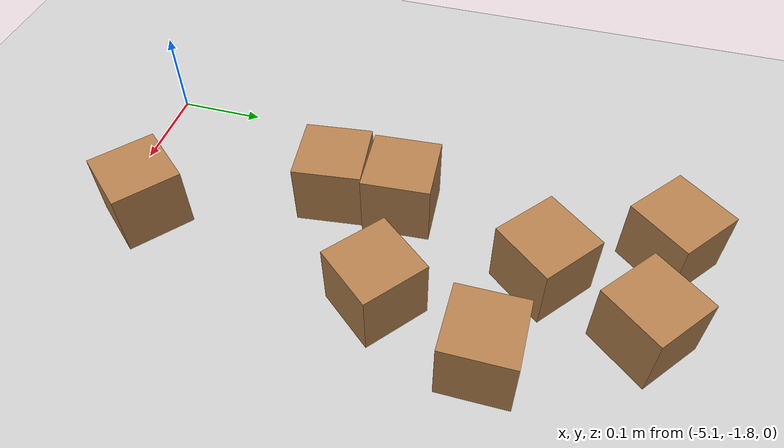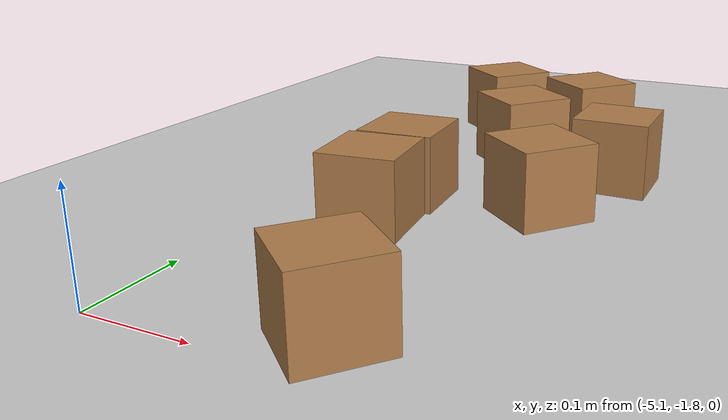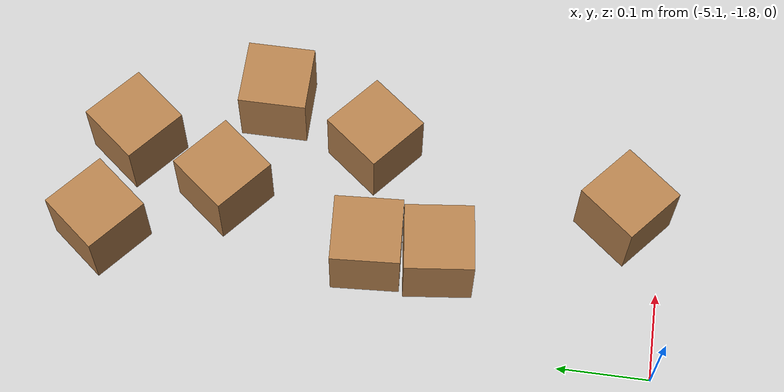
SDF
<sdf version="1.6">
 <world name="default">
  <model name="ground_plane">
   <static>1</static>
   <link name="link">
    <collision name="collision">
     <geometry><plane><normal>0 0 1</normal><size>100 100</size></plane></geometry>
     <surface><friction><ode><mu>100</mu><mu2>50</mu2></ode></friction></surface>
    </collision>
    <visual name="visual">
     <cast_shadows>0</cast_shadows>
     <geometry><plane><normal>0 0 1</normal><size>100 100</size></plane></geometry>
     <material>
      <script><uri>file://media/materials/scripts/gazebo.material</uri><name>Gazebo/Grey</name></script>
     </material>
    </visual>
   </link>
  </model>
  <model name="wood_cube_7_5cm_clone">
   <link name="link">
    <pose>0 0 0.0375 0 -0 0</pose>
    <inertial>
     <mass>0.2249</mass>
     <inertia>
      <ixx>0.000210844</ixx>
      <ixy>0</ixy>
      <ixz>0</ixz>
      <iyy>0.000210844</iyy>
      <iyz>0</iyz>
      <izz>0.000210844</izz>
     </inertia>
    </inertial>
    <collision name="collision">
     <geometry><box><size>0.075 0.075 0.075</size></box></geometry>
     <surface>
      <contact>
       <poissons_ratio>0.347</poissons_ratio>
       <elastic_modulus>8.8e+09</elastic_modulus>
       <ode><kp>100000</kp><kd>100</kd><max_vel>100</max_vel><min_depth>0.001</min_depth></ode>
      </contact>
      <friction>
       <torsional>
        <coefficient>1</coefficient>
        <use_patch_radius>0</use_patch_radius>
        <surface_radius>0.01</surface_radius>
       </torsional>
      </friction>
     </surface>
    </collision>
    <visual name="visual">
     <geometry><box><size>0.075 0.075 0.075</size></box></geometry>
     <material>
      <script><uri>file://media/materials/scripts/gazebo.material</uri><name>Gazebo/Wood</name></script>
     </material>
    </visual>
   </link>
   <pose>-4.99781 -1.55978 -0.001005 0 -0 0.11602</pose>
  </model>
  <model name="wood_cube_7_5cm_clone_1">
   <link name="link">
    <pose>0 0 0.0375 0 -0 0</pose>
    <inertial>
     <mass>0.2249</mass>
     <inertia>
      <ixx>0.000210844</ixx>
      <ixy>0</ixy>
      <ixz>0</ixz>
      <iyy>0.000210844</iyy>
      <iyz>0</iyz>
      <izz>0.000210844</izz>
     </inertia>
    </inertial>
    <collision name="collision">
     <geometry><box><size>0.075 0.075 0.075</size></box></geometry>
     <surface>
      <contact>
       <poissons_ratio>0.347</poissons_ratio>
       <elastic_modulus>8.8e+09</elastic_modulus>
       <ode><kp>100000</kp><kd>100</kd><max_vel>100</max_vel><min_depth>0.001</min_depth></ode>
      </contact>
      <friction>
       <torsional>
        <coefficient>1</coefficient>
        <use_patch_radius>0</use_patch_radius>
        <surface_radius>0.01</surface_radius>
       </torsional>
      </friction>
     </surface>
    </collision>
    <visual name="visual">
     <geometry><box><size>0.075 0.075 0.075</size></box></geometry>
     <material>
      <script><uri>file://media/materials/scripts/gazebo.material</uri><name>Gazebo/Wood</name></script>
     </material>
    </visual>
   </link>
   <pose>-5.00215 -1.44497 0.036495 1.5708 -0 0.066024</pose>
  </model>
  <model name="wood_cube_7_5cm_clone_7">
   <link name="link">
    <pose>0 0 0.0375 0 -0 0</pose>
    <inertial>
     <mass>0.2249</mass>
     <inertia>
      <ixx>0.000210844</ixx>
      <ixy>0</ixy>
      <ixz>0</ixz>
      <iyy>0.000210844</iyy>
      <iyz>0</iyz>
      <izz>0.000210844</izz>
     </inertia>
    </inertial>
    <collision name="collision">
     <geometry><box><size>0.075 0.075 0.075</size></box></geometry>
     <surface>
      <contact>
       <poissons_ratio>0.347</poissons_ratio>
       <elastic_modulus>8.8e+09</elastic_modulus>
       <ode><kp>100000</kp><kd>100</kd><max_vel>100</max_vel><min_depth>0.001</min_depth></ode>
      </contact>
      <friction>
       <torsional>
        <coefficient>1</coefficient>
        <use_patch_radius>0</use_patch_radius>
        <surface_radius>0.01</surface_radius>
       </torsional>
      </friction>
     </surface>
    </collision>
    <visual name="visual">
     <geometry><box><size>0.075 0.075 0.075</size></box></geometry>
     <material>
      <script><uri>file://media/materials/scripts/gazebo.material</uri><name>Gazebo/Wood</name></script>
     </material>
    </visual>
   </link>
   <pose>-4.82543 -1.35696 -0.001005 0 -0 0</pose>
  </model>
  <model name="wood_cube_7_5cm_clone_8">
   <link name="link">
    <pose>0 0 0.0375 0 -0 0</pose>
    <inertial>
     <mass>0.2249</mass>
     <inertia>
      <ixx>0.000210844</ixx>
      <ixy>0</ixy>
      <ixz>0</ixz>
      <iyy>0.000210844</iyy>
      <iyz>0</iyz>
      <izz>0.000210844</izz>
     </inertia>
    </inertial>
    <collision name="collision">
     <geometry><box><size>0.075 0.075 0.075</size></box></geometry>
     <surface>
      <contact>
       <poissons_ratio>0.347</poissons_ratio>
       <elastic_modulus>8.8e+09</elastic_modulus>
       <ode><kp>100000</kp><kd>100</kd><max_vel>100</max_vel><min_depth>0.001</min_depth></ode>
      </contact>
      <friction>
       <torsional>
        <coefficient>1</coefficient>
        <use_patch_radius>0</use_patch_radius>
        <surface_radius>0.01</surface_radius>
       </torsional>
      </friction>
     </surface>
    </collision>
    <visual name="visual">
     <geometry><box><size>0.075 0.075 0.075</size></box></geometry>
     <material>
      <script><uri>file://media/materials/scripts/gazebo.material</uri><name>Gazebo/Wood</name></script>
     </material>
    </visual>
   </link>
   <pose>-4.91761 -1.7568 -0.001005 0 0 -2.27099</pose>
  </model>
  <model name="wood_cube_7_5cm_clone_7_clone_1_clone">
   <link name="link">
    <pose>0 0 0.0375 0 -0 0</pose>
    <inertial>
     <mass>0.2249</mass>
     <inertia>
      <ixx>0.000210844</ixx>
      <ixy>0</ixy>
      <ixz>0</ixz>
      <iyy>0.000210844</iyy>
      <iyz>0</iyz>
      <izz>0.000210844</izz>
     </inertia>
    </inertial>
    <collision name="collision">
     <geometry><box><size>0.075 0.075 0.075</size></box></geometry>
     <surface>
      <contact>
       <poissons_ratio>0.347</poissons_ratio>
       <elastic_modulus>8.8e+09</elastic_modulus>
       <ode><kp>100000</kp><kd>100</kd><max_vel>100</max_vel><min_depth>0.001</min_depth></ode>
      </contact>
      <friction>
       <torsional>
        <coefficient>1</coefficient>
        <use_patch_radius>0</use_patch_radius>
        <surface_radius>0.01</surface_radius>
       </torsional>
      </friction>
     </surface>
    </collision>
    <visual name="visual">
     <geometry><box><size>0.075 0.075 0.075</size></box></geometry>
     <material>
      <script><uri>file://media/materials/scripts/gazebo.material</uri><name>Gazebo/Wood</name></script>
     </material>
    </visual>
   </link>
   <pose>-5.00847 -1.18942 -0.001005 0 0 -0.685305</pose>
  </model>
  <model name="wood_cube_7_5cm_clone_7_clone_1_clone_4">
   <link name="link">
    <pose>0 0 0.0375 0 -0 0</pose>
    <inertial>
     <mass>0.2249</mass>
     <inertia>
      <ixx>0.000210844</ixx>
      <ixy>0</ixy>
      <ixz>0</ixz>
      <iyy>0.000210844</iyy>
      <iyz>0</iyz>
      <izz>0.000210844</izz>
     </inertia>
    </inertial>
    <collision name="collision">
     <geometry><box><size>0.075 0.075 0.075</size></box></geometry>
     <surface>
      <contact>
       <poissons_ratio>0.347</poissons_ratio>
       <elastic_modulus>8.8e+09</elastic_modulus>
       <ode><kp>100000</kp><kd>100</kd><max_vel>100</max_vel><min_depth>0.001</min_depth></ode>
      </contact>
      <friction>
       <torsional>
        <coefficient>1</coefficient>
        <use_patch_radius>0</use_patch_radius>
        <surface_radius>0.01</surface_radius>
       </torsional>
      </friction>
     </surface>
    </collision>
    <visual name="visual">
     <geometry><box><size>0.075 0.075 0.075</size></box></geometry>
     <material>
      <script><uri>file://media/materials/scripts/gazebo.material</uri><name>Gazebo/Wood</name></script>
     </material>
    </visual>
   </link>
   <pose>-4.94273 -1.31614 -0.001005 0 0 -0.685305</pose>
  </model>
  <model name="wood_cube_7_5cm_clone_7_clone_1_clone_11">
   <link name="link">
    <pose>0 0 0.0375 0 -0 0</pose>
    <inertial>
     <mass>0.2249</mass>
     <inertia>
      <ixx>0.000210844</ixx>
      <ixy>0</ixy>
      <ixz>0</ixz>
      <iyy>0.000210844</iyy>
      <iyz>0</iyz>
      <izz>0.000210844</izz>
     </inertia>
    </inertial>
    <collision name="collision">
     <geometry><box><size>0.075 0.075 0.075</size></box></geometry>
     <surface>
      <contact>
       <poissons_ratio>0.347</poissons_ratio>
       <elastic_modulus>8.8e+09</elastic_modulus>
       <ode><kp>100000</kp><kd>100</kd><max_vel>100</max_vel><min_depth>0.001</min_depth></ode>
      </contact>
      <friction>
       <torsional>
        <coefficient>1</coefficient>
        <use_patch_radius>0</use_patch_radius>
        <surface_radius>0.01</surface_radius>
       </torsional>
      </friction>
     </surface>
    </collision>
    <visual name="visual">
     <geometry><box><size>0.075 0.075 0.075</size></box></geometry>
     <material>
      <script><uri>file://media/materials/scripts/gazebo.material</uri><name>Gazebo/Wood</name></script>
     </material>
    </visual>
   </link>
   <pose>-4.89581 -1.20918 -0.001005 0 0 -0.685305</pose>
  </model>
  <model name="wood_cube_7_5cm_clone_7_clone_1_clone_14">
   <link name="link">
    <pose>0 0 0.0375 0 -0 0</pose>
    <inertial>
     <mass>0.2249</mass>
     <inertia>
      <ixx>0.000210844</ixx>
      <ixy>0</ixy>
      <ixz>0</ixz>
      <iyy>0.000210844</iyy>
      <iyz>0</iyz>
      <izz>0.000210844</izz>
     </inertia>
    </inertial>
    <collision name="collision">
     <geometry><box><size>0.075 0.075 0.075</size></box></geometry>
     <surface>
      <contact>
       <poissons_ratio>0.347</poissons_ratio>
       <elastic_modulus>8.8e+09</elastic_modulus>
       <ode><kp>100000</kp><kd>100</kd><max_vel>100</max_vel><min_depth>0.001</min_depth></ode>
      </contact>
      <friction>
       <torsional>
        <coefficient>1</coefficient>
        <use_patch_radius>0</use_patch_radius>
        <surface_radius>0.01</surface_radius>
       </torsional>
      </friction>
     </surface>
    </collision>
    <visual name="visual">
     <geometry><box><size>0.075 0.075 0.075</size></box></geometry>
     <material>
      <script><uri>file://media/materials/scripts/gazebo.material</uri><name>Gazebo/Wood</name></script>
     </material>
    </visual>
   </link>
   <pose>-4.86897 -1.47377 -0.001005 0 0 -0.685305</pose>
  </model>
 </world>
</sdf>
